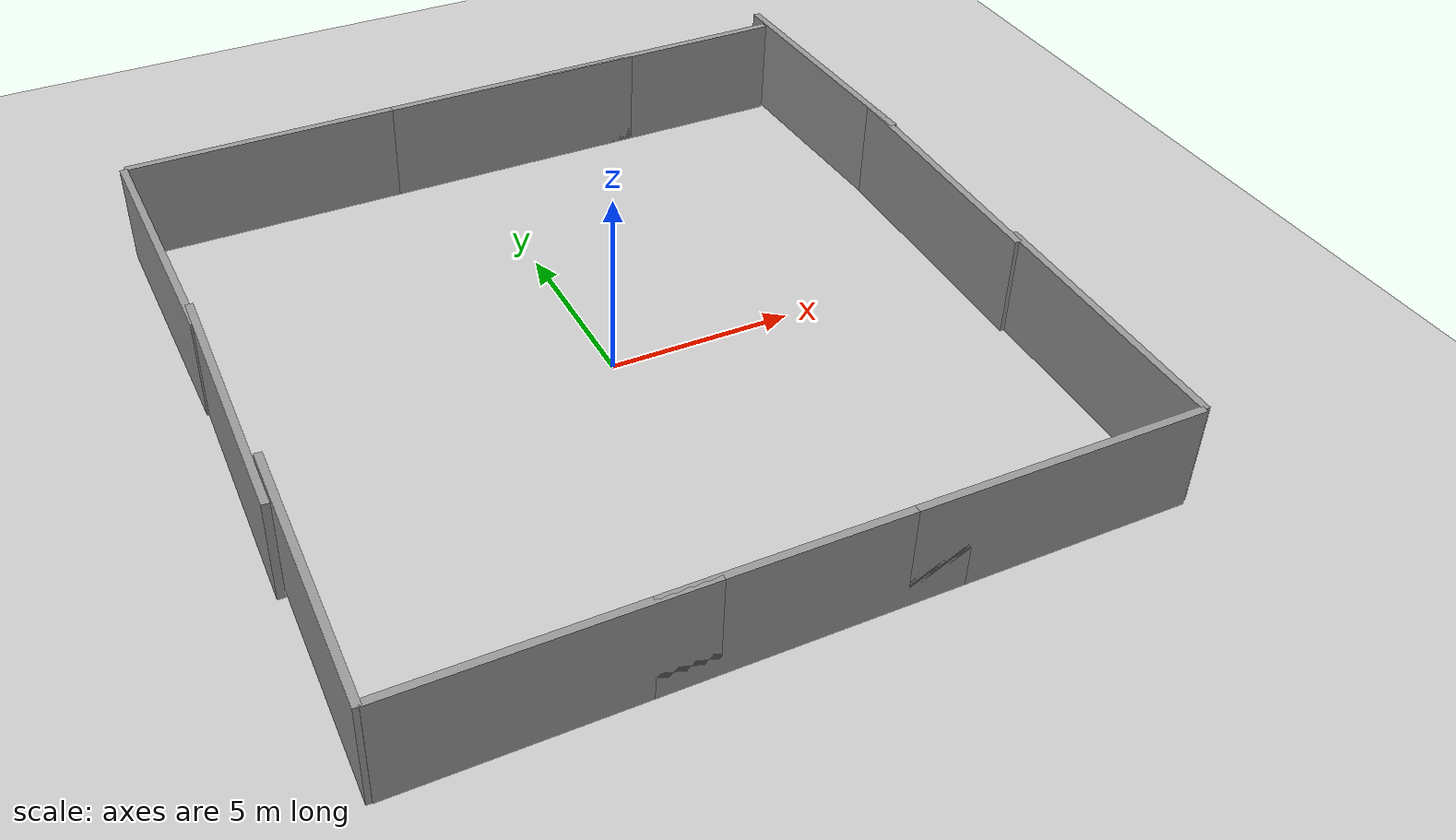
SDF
<sdf version="1.4">
 <world name="default">
  <light name="sun" type="directional">
   <pose>0 0 10 0 -0 0</pose>
   <diffuse>0.8 0.8 0.8 1</diffuse>
   <specular>0.2 0.2 0.2 1</specular>
   <attenuation>
    <range>1000</range>
    <constant>0.9</constant>
    <linear>0.01</linear>
    <quadratic>0.001</quadratic>
   </attenuation>
   <direction>-0.5 0.1 -0.9</direction>
  </light>
  <model name="ground_plane">
   <static>1</static>
   <link name="link">
    <collision name="collision">
     <geometry><plane><normal>0 0 1</normal><size>100 100</size></plane></geometry>
     <surface><friction><ode><mu>100</mu><mu2>50</mu2></ode></friction></surface>
    </collision>
    <visual name="visual">
     <cast_shadows>0</cast_shadows>
     <geometry><plane><normal>0 0 1</normal><size>100 100</size></plane></geometry>
     <material>
      <script><uri>file://media/materials/scripts/gazebo.material</uri><name>Gazebo/Grey</name></script>
     </material>
    </visual>
    <velocity_decay><linear>0</linear><angular>0</angular></velocity_decay>
   </link>
  </model>
  <physics type="ode">
   <max_step_size>0.001</max_step_size>
   <real_time_factor>1</real_time_factor>
   <real_time_update_rate>1000</real_time_update_rate>
   <gravity>0 0 -9.8</gravity>
  </physics>
  <scene><ambient>0.4 0.4 0.4 1</ambient><background>0.7 0.7 0.7 1</background><shadows>1</shadows></scene>
  <model name="grey_wall">
   <static>1</static>
   <link name="link">
    <pose>0 0 1.4 0 -0 0</pose>
    <collision name="collision"><geometry><box><size>7.5 0.2 2.8</size></box></geometry></collision>
    <visual name="visual">
     <cast_shadows>0</cast_shadows>
     <geometry><box><size>7.5 0.2 2.8</size></box></geometry>
     <material>
      <script>
       <uri>model://grey_wall/materials/scripts</uri>
       <uri>model://grey_wall/materials/textures</uri>
       <name>vrc/grey_wall</name>
      </script>
     </material>
    </visual>
    <velocity_decay><linear>0</linear><angular>0</angular></velocity_decay>
   </link>
   <pose>-6 10 0 0 -0 0</pose>
  </model>
  <model name="grey_wall_0">
   <static>1</static>
   <link name="link">
    <pose>0 0 1.4 0 -0 0</pose>
    <collision name="collision"><geometry><box><size>7.5 0.2 2.8</size></box></geometry></collision>
    <visual name="visual">
     <cast_shadows>0</cast_shadows>
     <geometry><box><size>7.5 0.2 2.8</size></box></geometry>
     <material>
      <script>
       <uri>model://grey_wall/materials/scripts</uri>
       <uri>model://grey_wall/materials/textures</uri>
       <name>vrc/grey_wall</name>
      </script>
     </material>
    </visual>
    <velocity_decay><linear>0</linear><angular>0</angular></velocity_decay>
   </link>
   <pose>1.46006 10 0 0 -0 0</pose>
  </model>
  <model name="grey_wall_1">
   <static>1</static>
   <link name="link">
    <pose>0 0 1.4 0 -0 0</pose>
    <collision name="collision"><geometry><box><size>7.5 0.2 2.8</size></box></geometry></collision>
    <visual name="visual">
     <cast_shadows>0</cast_shadows>
     <geometry><box><size>7.5 0.2 2.8</size></box></geometry>
     <material>
      <script>
       <uri>model://grey_wall/materials/scripts</uri>
       <uri>model://grey_wall/materials/textures</uri>
       <name>vrc/grey_wall</name>
      </script>
     </material>
    </visual>
    <velocity_decay><linear>0</linear><angular>0</angular></velocity_decay>
   </link>
   <pose>6 10 0 0 -0 0</pose>
  </model>
  <model name="grey_wall_2">
   <static>1</static>
   <link name="link">
    <pose>0 0 1.4 0 -0 0</pose>
    <collision name="collision"><geometry><box><size>7.5 0.2 2.8</size></box></geometry></collision>
    <visual name="visual">
     <cast_shadows>0</cast_shadows>
     <geometry><box><size>7.5 0.2 2.8</size></box></geometry>
     <material>
      <script>
       <uri>model://grey_wall/materials/scripts</uri>
       <uri>model://grey_wall/materials/textures</uri>
       <name>vrc/grey_wall</name>
      </script>
     </material>
    </visual>
    <velocity_decay><linear>0</linear><angular>0</angular></velocity_decay>
   </link>
   <pose>-6 -10 0 0 -0 0</pose>
  </model>
  <model name="grey_wall_3">
   <static>1</static>
   <link name="link">
    <pose>0 0 1.4 0 -0 0</pose>
    <collision name="collision"><geometry><box><size>7.5 0.2 2.8</size></box></geometry></collision>
    <visual name="visual">
     <cast_shadows>0</cast_shadows>
     <geometry><box><size>7.5 0.2 2.8</size></box></geometry>
     <material>
      <script>
       <uri>model://grey_wall/materials/scripts</uri>
       <uri>model://grey_wall/materials/textures</uri>
       <name>vrc/grey_wall</name>
      </script>
     </material>
    </visual>
    <velocity_decay><linear>0</linear><angular>0</angular></velocity_decay>
   </link>
   <pose>0 -10 0 0 -0 0</pose>
  </model>
  <model name="grey_wall_4">
   <static>1</static>
   <link name="link">
    <pose>0 0 1.4 0 -0 0</pose>
    <collision name="collision"><geometry><box><size>7.5 0.2 2.8</size></box></geometry></collision>
    <visual name="visual">
     <cast_shadows>0</cast_shadows>
     <geometry><box><size>7.5 0.2 2.8</size></box></geometry>
     <material>
      <script>
       <uri>model://grey_wall/materials/scripts</uri>
       <uri>model://grey_wall/materials/textures</uri>
       <name>vrc/grey_wall</name>
      </script>
     </material>
    </visual>
    <velocity_decay><linear>0</linear><angular>0</angular></velocity_decay>
   </link>
   <pose>6 -10 0 0 -0 0</pose>
  </model>
  <model name="grey_wall_5">
   <static>1</static>
   <link name="link">
    <pose>0 0 1.4 0 -0 0</pose>
    <collision name="collision"><geometry><box><size>7.5 0.2 2.8</size></box></geometry></collision>
    <visual name="visual">
     <cast_shadows>0</cast_shadows>
     <geometry><box><size>7.5 0.2 2.8</size></box></geometry>
     <material>
      <script>
       <uri>model://grey_wall/materials/scripts</uri>
       <uri>model://grey_wall/materials/textures</uri>
       <name>vrc/grey_wall</name>
      </script>
     </material>
    </visual>
    <velocity_decay><linear>0</linear><angular>0</angular></velocity_decay>
   </link>
   <pose>9.8821 -6.26779 0 0 0 -1.6</pose>
  </model>
  <model name="grey_wall_6">
   <static>1</static>
   <link name="link">
    <pose>0 0 1.4 0 -0 0</pose>
    <collision name="collision"><geometry><box><size>7.5 0.2 2.8</size></box></geometry></collision>
    <visual name="visual">
     <cast_shadows>0</cast_shadows>
     <geometry><box><size>7.5 0.2 2.8</size></box></geometry>
     <material>
      <script>
       <uri>model://grey_wall/materials/scripts</uri>
       <uri>model://grey_wall/materials/textures</uri>
       <name>vrc/grey_wall</name>
      </script>
     </material>
    </visual>
    <velocity_decay><linear>0</linear><angular>0</angular></velocity_decay>
   </link>
   <pose>9.97085 0.820082 0 0 0 -1.6</pose>
  </model>
  <model name="grey_wall_7">
   <static>1</static>
   <link name="link">
    <pose>0 0 1.4 0 -0 0</pose>
    <collision name="collision"><geometry><box><size>7.5 0.2 2.8</size></box></geometry></collision>
    <visual name="visual">
     <cast_shadows>0</cast_shadows>
     <geometry><box><size>7.5 0.2 2.8</size></box></geometry>
     <material>
      <script>
       <uri>model://grey_wall/materials/scripts</uri>
       <uri>model://grey_wall/materials/textures</uri>
       <name>vrc/grey_wall</name>
      </script>
     </material>
    </visual>
    <velocity_decay><linear>0</linear><angular>0</angular></velocity_decay>
   </link>
   <pose>10 7 0 0 -0 1.6</pose>
  </model>
  <model name="grey_wall_8">
   <static>1</static>
   <link name="link">
    <pose>0 0 1.4 0 -0 0</pose>
    <collision name="collision"><geometry><box><size>7.5 0.2 2.8</size></box></geometry></collision>
    <visual name="visual">
     <cast_shadows>0</cast_shadows>
     <geometry><box><size>7.5 0.2 2.8</size></box></geometry>
     <material>
      <script>
       <uri>model://grey_wall/materials/scripts</uri>
       <uri>model://grey_wall/materials/textures</uri>
       <name>vrc/grey_wall</name>
      </script>
     </material>
    </visual>
    <velocity_decay><linear>0</linear><angular>0</angular></velocity_decay>
   </link>
   <pose>-9.67453 -6.33558 0 0 0 -1.6</pose>
  </model>
  <model name="grey_wall_9">
   <static>1</static>
   <link name="link">
    <pose>0 0 1.4 0 -0 0</pose>
    <collision name="collision"><geometry><box><size>7.5 0.2 2.8</size></box></geometry></collision>
    <visual name="visual">
     <cast_shadows>0</cast_shadows>
     <geometry><box><size>7.5 0.2 2.8</size></box></geometry>
     <material>
      <script>
       <uri>model://grey_wall/materials/scripts</uri>
       <uri>model://grey_wall/materials/textures</uri>
       <name>vrc/grey_wall</name>
      </script>
     </material>
    </visual>
    <velocity_decay><linear>0</linear><angular>0</angular></velocity_decay>
   </link>
   <pose>-9.73634 -0.457332 0 0 0 -1.6</pose>
  </model>
  <model name="grey_wall_10">
   <static>1</static>
   <link name="link">
    <pose>0 0 1.4 0 -0 0</pose>
    <collision name="collision"><geometry><box><size>7.5 0.2 2.8</size></box></geometry></collision>
    <visual name="visual">
     <cast_shadows>0</cast_shadows>
     <geometry><box><size>7.5 0.2 2.8</size></box></geometry>
     <material>
      <script>
       <uri>model://grey_wall/materials/scripts</uri>
       <uri>model://grey_wall/materials/textures</uri>
       <name>vrc/grey_wall</name>
      </script>
     </material>
    </visual>
    <velocity_decay><linear>0</linear><angular>0</angular></velocity_decay>
   </link>
   <pose>-9.73912 6.22084 0 0 0 -1.56</pose>
  </model>
 </world>
</sdf>
